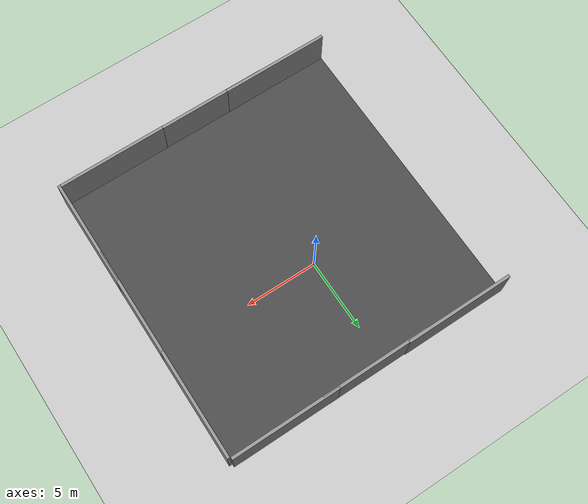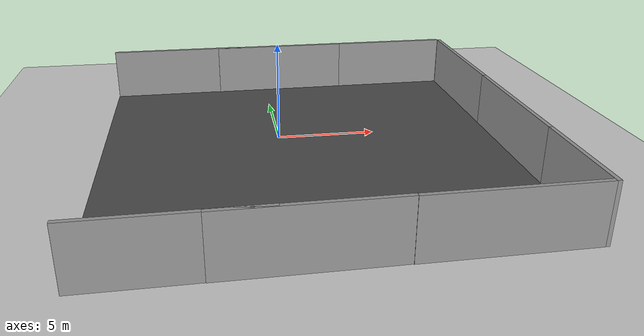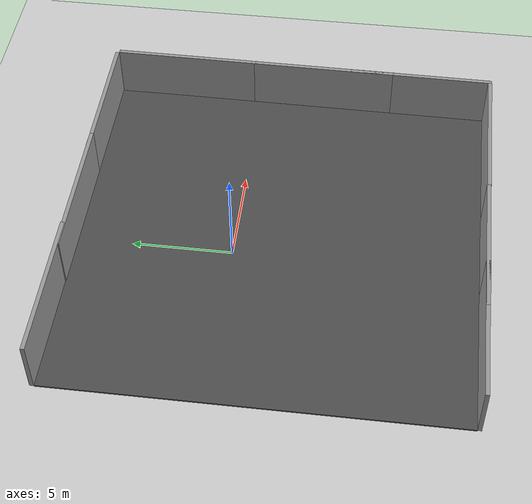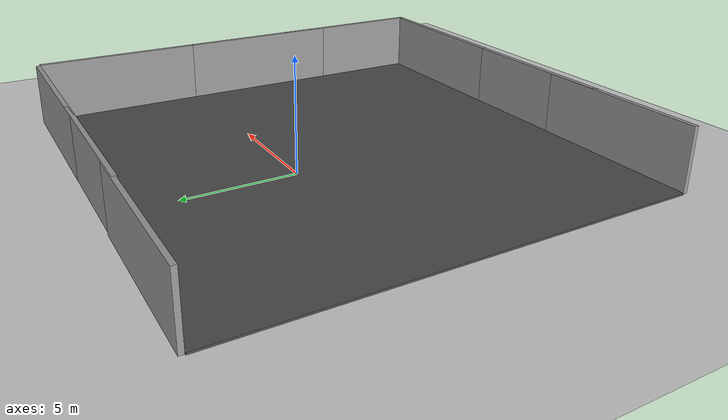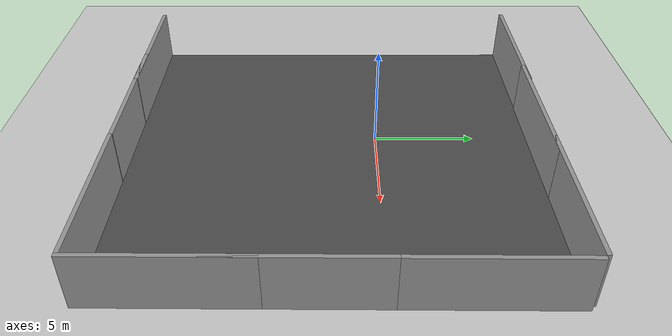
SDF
<sdf version="1.6">
 <world name="default">
  <light name="sun" type="directional">
   <pose>0 0 10 0 -0 0</pose>
   <diffuse>0.8 0.8 0.8 1</diffuse>
   <specular>0.1 0.1 0.1 1</specular>
   <attenuation>
    <range>1000</range>
    <constant>0.9</constant>
    <linear>0.01</linear>
    <quadratic>0.001</quadratic>
   </attenuation>
   <direction>-0.5 0.5 -1</direction>
  </light>
  <model name="ground_plane">
   <static>1</static>
   <link name="link">
    <collision name="collision">
     <geometry><plane><normal>0 0 1</normal><size>100 100</size></plane></geometry>
     <surface><friction><ode><mu>100</mu><mu2>50</mu2></ode></friction></surface>
    </collision>
    <visual name="visual">
     <cast_shadows>0</cast_shadows>
     <geometry><plane><normal>0 0 1</normal><size>100 100</size></plane></geometry>
     <material>
      <script><uri>file://media/materials/scripts/gazebo.material</uri><name>Gazebo/Grey</name></script>
     </material>
    </visual>
   </link>
  </model>
  <gravity>0 0 -9.8</gravity>
  <magnetic_field>6e-06 2.3e-05 -4.2e-05</magnetic_field>
  <atmosphere type="adiabatic"/>
  <physics name="default_physics" default="0" type="ode">
   <max_step_size>0.001</max_step_size>
   <real_time_factor>1</real_time_factor>
   <real_time_update_rate>1000</real_time_update_rate>
  </physics>
  <scene><ambient>0.4 0.4 0.4 1</ambient><background>0.7 0.7 0.7 1</background><shadows>1</shadows></scene>
  <spherical_coordinates>
   <surface_model>EARTH_WGS84</surface_model>
   <latitude_deg>0</latitude_deg>
   <longitude_deg>0</longitude_deg>
   <elevation>0</elevation>
   <heading_deg>0</heading_deg>
  </spherical_coordinates>
  <model name="grey_wall">
   <static>1</static>
   <link name="link">
    <pose>0 0 1.4 0 -0 0</pose>
    <collision name="collision"><geometry><box><size>7.5 0.2 2.8</size></box></geometry></collision>
    <visual name="visual">
     <cast_shadows>0</cast_shadows>
     <geometry><box><size>7.5 0.2 2.8</size></box></geometry>
     <material>
      <script>
       <uri>model://grey_wall/materials/scripts</uri>
       <uri>model://grey_wall/materials/textures</uri>
       <name>vrc/grey_wall</name>
      </script>
     </material>
    </visual>
   </link>
   <pose>0.992269 7.87079 0 0 -0 0</pose>
  </model>
  <model name="grey_wall_clone">
   <static>1</static>
   <link name="link">
    <pose>0 0 1.4 0 -0 0</pose>
    <collision name="collision"><geometry><box><size>7.5 0.2 2.8</size></box></geometry></collision>
    <visual name="visual">
     <cast_shadows>0</cast_shadows>
     <geometry><box><size>7.5 0.2 2.8</size></box></geometry>
     <material>
      <script>
       <uri>model://grey_wall/materials/scripts</uri>
       <uri>model://grey_wall/materials/textures</uri>
       <name>vrc/grey_wall</name>
      </script>
     </material>
    </visual>
   </link>
   <pose>7.36653 7.87416 0 0 -0 0</pose>
  </model>
  <model name="asphalt_plane">
   <static>1</static>
   <link name="link">
    <collision name="collision"><geometry><box><size>20 20 0.1</size></box></geometry></collision>
    <visual name="visual">
     <cast_shadows>0</cast_shadows>
     <geometry><box><size>20 20 0.1</size></box></geometry>
     <material>
      <script>
       <uri>model://asphalt_plane/materials/scripts</uri>
       <uri>model://asphalt_plane/materials/textures</uri>
       <name>vrc/asphalt</name>
      </script>
     </material>
    </visual>
   </link>
   <pose>1.10617 -2.19977 0 0 -0 0</pose>
  </model>
  <model name="grey_wall_clone_0">
   <static>1</static>
   <link name="link">
    <pose>0 0 1.4 0 -0 0</pose>
    <collision name="collision"><geometry><box><size>7.5 0.2 2.8</size></box></geometry></collision>
    <visual name="visual">
     <cast_shadows>0</cast_shadows>
     <geometry><box><size>7.5 0.2 2.8</size></box></geometry>
     <material>
      <script>
       <uri>model://grey_wall/materials/scripts</uri>
       <uri>model://grey_wall/materials/textures</uri>
       <name>vrc/grey_wall</name>
      </script>
     </material>
    </visual>
   </link>
   <pose>-5.13089 7.91776 0 0 -0 0</pose>
  </model>
  <model name="grey_wall_0">
   <static>1</static>
   <link name="link">
    <pose>0 0 1.4 0 -0 0</pose>
    <collision name="collision"><geometry><box><size>7.5 0.2 2.8</size></box></geometry></collision>
    <visual name="visual">
     <cast_shadows>0</cast_shadows>
     <geometry><box><size>7.5 0.2 2.8</size></box></geometry>
     <material>
      <script>
       <uri>model://grey_wall/materials/scripts</uri>
       <uri>model://grey_wall/materials/textures</uri>
       <name>vrc/grey_wall</name>
      </script>
     </material>
    </visual>
   </link>
   <pose>11.2014 4.01659 0 0 0 -1.57918</pose>
  </model>
  <model name="grey_wall_0_clone">
   <static>1</static>
   <link name="link">
    <pose>0 0 1.4 0 -0 0</pose>
    <collision name="collision"><geometry><box><size>7.5 0.2 2.8</size></box></geometry></collision>
    <visual name="visual">
     <cast_shadows>0</cast_shadows>
     <geometry><box><size>7.5 0.2 2.8</size></box></geometry>
     <material>
      <script>
       <uri>model://grey_wall/materials/scripts</uri>
       <uri>model://grey_wall/materials/textures</uri>
       <name>vrc/grey_wall</name>
      </script>
     </material>
    </visual>
   </link>
   <pose>11.1372 -3.41173 0 0 0 -1.57918</pose>
  </model>
  <model name="grey_wall_0_clone_0">
   <static>1</static>
   <link name="link">
    <pose>0 0 1.4 0 -0 0</pose>
    <collision name="collision"><geometry><box><size>7.5 0.2 2.8</size></box></geometry></collision>
    <visual name="visual">
     <cast_shadows>0</cast_shadows>
     <geometry><box><size>7.5 0.2 2.8</size></box></geometry>
     <material>
      <script>
       <uri>model://grey_wall/materials/scripts</uri>
       <uri>model://grey_wall/materials/textures</uri>
       <name>vrc/grey_wall</name>
      </script>
     </material>
    </visual>
   </link>
   <pose>11.0946 -8.67061 0 0 0 -1.57918</pose>
  </model>
  <model name="grey_wall_clone_0_clone">
   <static>1</static>
   <link name="link">
    <pose>0 0 1.4 0 -0 0</pose>
    <collision name="collision"><geometry><box><size>7.5 0.2 2.8</size></box></geometry></collision>
    <visual name="visual">
     <cast_shadows>0</cast_shadows>
     <geometry><box><size>7.5 0.2 2.8</size></box></geometry>
     <material>
      <script>
       <uri>model://grey_wall/materials/scripts</uri>
       <uri>model://grey_wall/materials/textures</uri>
       <name>vrc/grey_wall</name>
      </script>
     </material>
    </visual>
   </link>
   <pose>7.22766 -12.3299 0 0 -0 0</pose>
  </model>
  <model name="grey_wall_clone_0_clone_clone">
   <static>1</static>
   <link name="link">
    <pose>0 0 1.4 0 -0 0</pose>
    <collision name="collision"><geometry><box><size>7.5 0.2 2.8</size></box></geometry></collision>
    <visual name="visual">
     <cast_shadows>0</cast_shadows>
     <geometry><box><size>7.5 0.2 2.8</size></box></geometry>
     <material>
      <script>
       <uri>model://grey_wall/materials/scripts</uri>
       <uri>model://grey_wall/materials/textures</uri>
       <name>vrc/grey_wall</name>
      </script>
     </material>
    </visual>
   </link>
   <pose>-0.24505 -12.3092 0 0 -0 0</pose>
  </model>
  <model name="grey_wall_clone_0_clone_clone_clone">
   <static>1</static>
   <link name="link">
    <pose>0 0 1.4 0 -0 0</pose>
    <collision name="collision"><geometry><box><size>7.5 0.2 2.8</size></box></geometry></collision>
    <visual name="visual">
     <cast_shadows>0</cast_shadows>
     <geometry><box><size>7.5 0.2 2.8</size></box></geometry>
     <material>
      <script>
       <uri>model://grey_wall/materials/scripts</uri>
       <uri>model://grey_wall/materials/textures</uri>
       <name>vrc/grey_wall</name>
      </script>
     </material>
    </visual>
   </link>
   <pose>-5.12652 -12.2917 0 0 -0 0</pose>
  </model>
 </world>
</sdf>
